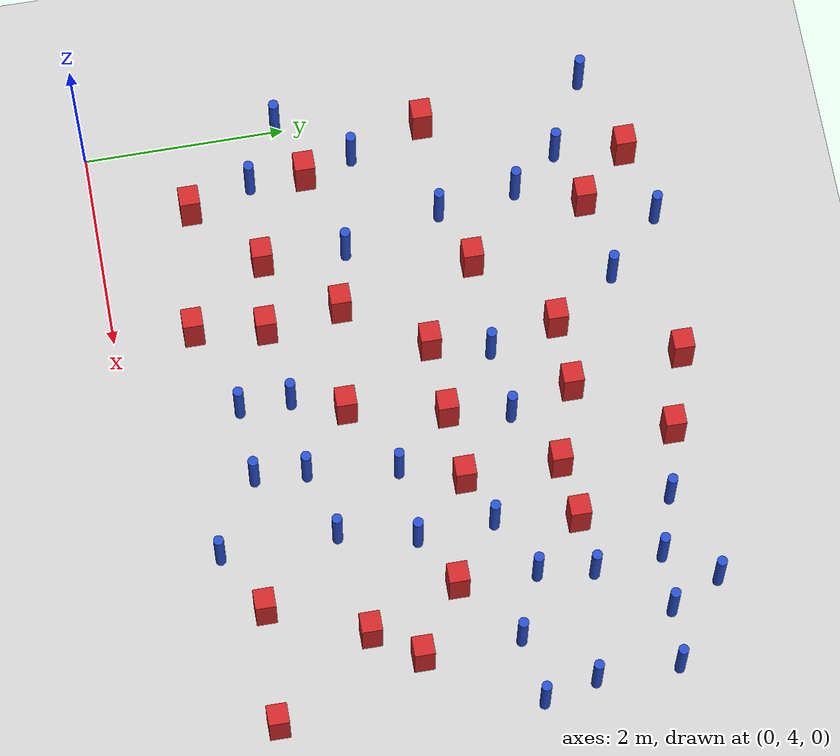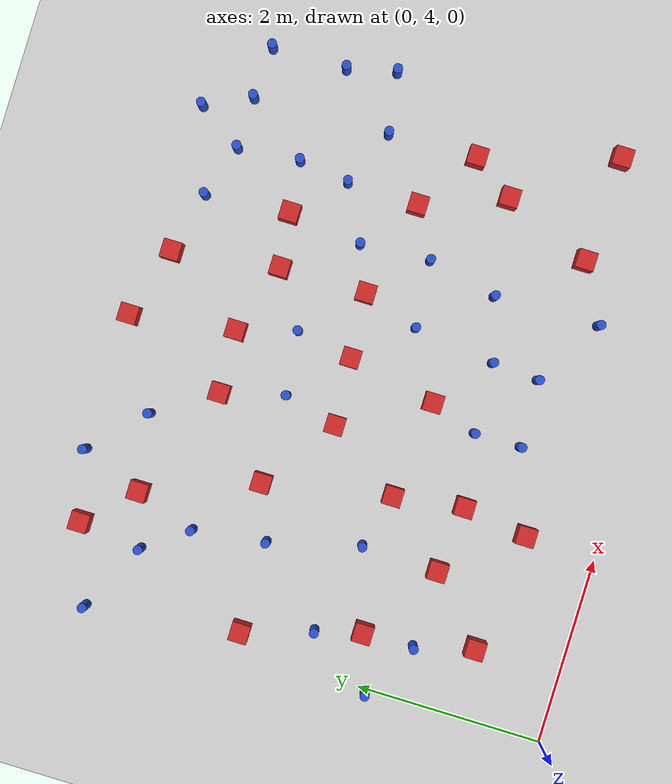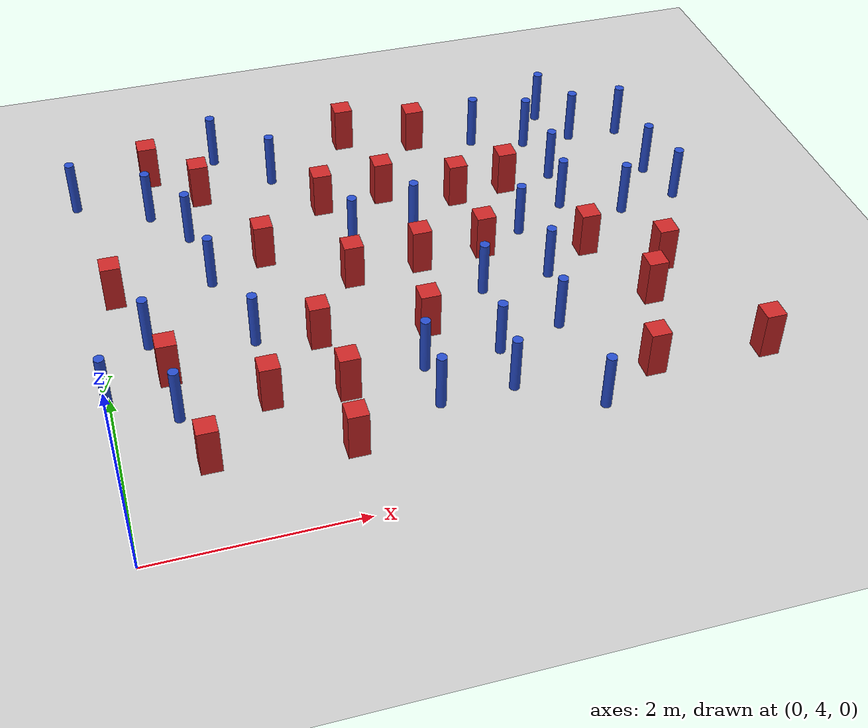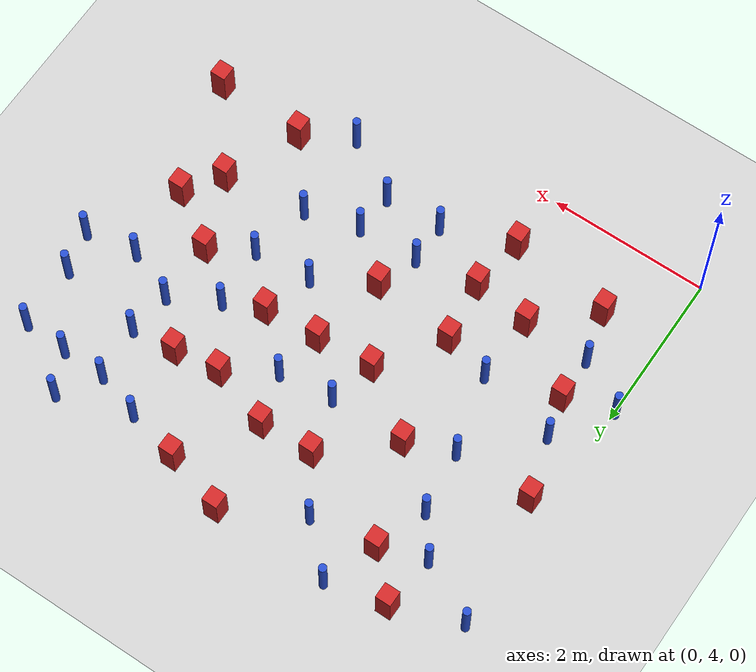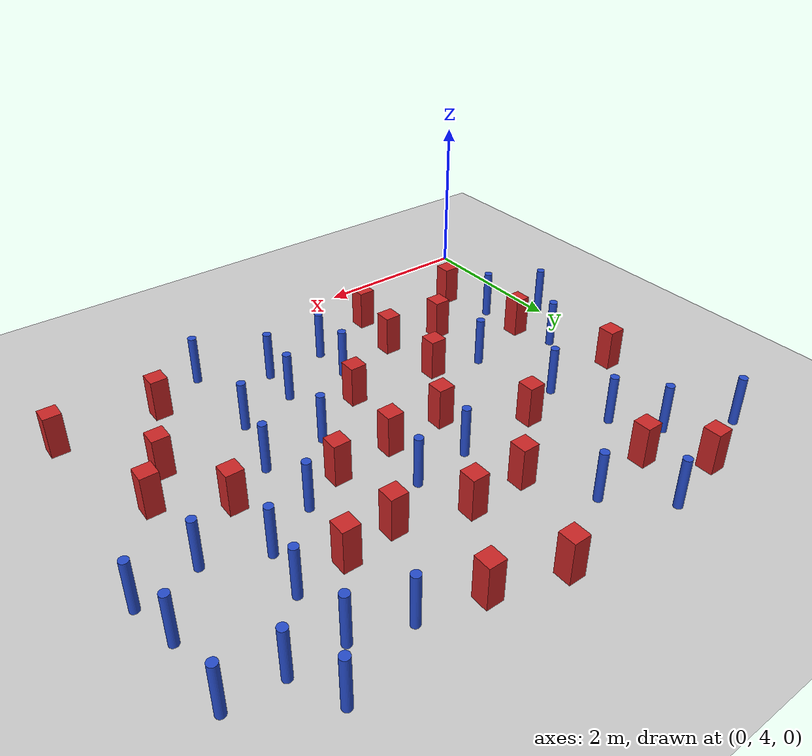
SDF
<sdf version="1.6">
 <world name="default">
  <model name="ground_plane">
   <static>1</static>
   <link name="link">
    <collision name="collision">
     <geometry><plane><normal>0 0 1</normal><size>100 100</size></plane></geometry>
     <surface><friction><ode><mu>100</mu><mu2>50</mu2></ode></friction></surface>
    </collision>
    <visual name="visual">
     <cast_shadows>0</cast_shadows>
     <geometry><plane><normal>0 0 1</normal><size>100 100</size></plane></geometry>
     <material>
      <ambient>1.0 1.0 1.0 1.0</ambient>
      <diffuse>0.8 0.8 0.8 1.0</diffuse>
      <specular>0.01 0.01 0.01 1.000000</specular>
     </material>
    </visual>
   </link>
  </model>
  <model name="square_post_obstacle1">
   <static>true</static>
   <pose>3.23395350639 8.3291602292 8.22691968438e-08 7.22125133819e-06 -7.54495500217e-07 2.29674213826e-05</pose>
   <link name="link">
    <pose>0 0 0.25 0 -0 0</pose>
    <inertial>
     <mass>100</mass>
     <inertia>
      <ixx>0.166667</ixx>
      <ixy>0</ixy>
      <ixz>0</ixz>
      <iyy>0.166667</iyy>
      <iyz>0</iyz>
      <izz>0.166667</izz>
     </inertia>
    </inertial>
    <collision name="collision"><geometry><box><size>.2 .2 .5</size></box></geometry></collision>
    <visual name="visual">
     <geometry><box><size>.2 .2 .5</size></box></geometry>
     <material>
      <script><name>Gazebo/Red</name><uri>file://media/materials/scripts/gazebo.material</uri></script>
     </material>
    </visual>
   </link>
  </model>
  <model name="pole_obstacle4">
   <static>true</static>
   <pose>4.50467344386 9.05752582636 2.88873142074e-08 -9.9053668967e-09 4.60219948993e-07 -1.20965994957e-07</pose>
   <link name="link">
    <pose>0 0 0.3 0 -0 0</pose>
    <inertial>
     <mass>1</mass>
     <inertia><ixx>0.145833</ixx><ixy>0</ixy><ixz>0</ixz><iyy>0.145833</iyy><iyz>0</iyz><izz>0.125</izz></inertia>
    </inertial>
    <collision name="collision">
     <geometry><cylinder><radius>0.05</radius><length>.6</length></cylinder></geometry>
    </collision>
    <visual name="visual">
     <geometry><cylinder><radius>0.05</radius><length>.6</length></cylinder></geometry>
     <material>
      <script><name>Gazebo/Blue</name><uri>file://media/materials/scripts/gazebo.material</uri></script>
     </material>
    </visual>
   </link>
  </model>
  <model name="square_post_obstacle5">
   <static>true</static>
   <pose>1.77964697952 7.60460296288 8.22691968438e-08 7.2212513382e-06 -7.54495500217e-07 2.29674213826e-05</pose>
   <link name="link">
    <pose>0 0 0.25 0 -0 0</pose>
    <inertial>
     <mass>100</mass>
     <inertia>
      <ixx>0.166667</ixx>
      <ixy>0</ixy>
      <ixz>0</ixz>
      <iyy>0.166667</iyy>
      <iyz>0</iyz>
      <izz>0.166667</izz>
     </inertia>
    </inertial>
    <collision name="collision"><geometry><box><size>.2 .2 .5</size></box></geometry></collision>
    <visual name="visual">
     <geometry><box><size>.2 .2 .5</size></box></geometry>
     <material>
      <script><name>Gazebo/Red</name><uri>file://media/materials/scripts/gazebo.material</uri></script>
     </material>
    </visual>
   </link>
  </model>
  <model name="pole_obstacle11">
   <static>true</static>
   <pose>6.20497927273 8.02178845406 2.88873142074e-08 -9.90536690354e-09 4.60219948977e-07 -1.20965994967e-07</pose>
   <link name="link">
    <pose>0 0 0.3 0 -0 0</pose>
    <inertial>
     <mass>1</mass>
     <inertia><ixx>0.145833</ixx><ixy>0</ixy><ixz>0</ixz><iyy>0.145833</iyy><iyz>0</iyz><izz>0.125</izz></inertia>
    </inertial>
    <collision name="collision">
     <geometry><cylinder><radius>0.05</radius><length>.6</length></cylinder></geometry>
    </collision>
    <visual name="visual">
     <geometry><cylinder><radius>0.05</radius><length>.6</length></cylinder></geometry>
     <material>
      <script><name>Gazebo/Blue</name><uri>file://media/materials/scripts/gazebo.material</uri></script>
     </material>
    </visual>
   </link>
  </model>
  <model name="pole_obstacle13">
   <static>true</static>
   <pose>4.39369261284 4.69720485507 2.88873142074e-08 -9.90536690842e-09 4.60219948965e-07 -1.20965994976e-07</pose>
   <link name="link">
    <pose>0 0 0.3 0 -0 0</pose>
    <inertial>
     <mass>1</mass>
     <inertia><ixx>0.145833</ixx><ixy>0</ixy><ixz>0</ixz><iyy>0.145833</iyy><iyz>0</iyz><izz>0.125</izz></inertia>
    </inertial>
    <collision name="collision">
     <geometry><cylinder><radius>0.05</radius><length>.6</length></cylinder></geometry>
    </collision>
    <visual name="visual">
     <geometry><cylinder><radius>0.05</radius><length>.6</length></cylinder></geometry>
     <material>
      <script><name>Gazebo/Blue</name><uri>file://media/materials/scripts/gazebo.material</uri></script>
     </material>
    </visual>
   </link>
  </model>
  <model name="square_post_obstacle12">
   <static>true</static>
   <pose>0.582915900474 6.12497515747 8.22691968438e-08 7.2212513382e-06 -7.54495500217e-07 2.29674213826e-05</pose>
   <link name="link">
    <pose>0 0 0.25 0 -0 0</pose>
    <inertial>
     <mass>100</mass>
     <inertia>
      <ixx>0.166667</ixx>
      <ixy>0</ixy>
      <ixz>0</ixz>
      <iyy>0.166667</iyy>
      <iyz>0</iyz>
      <izz>0.166667</izz>
     </inertia>
    </inertial>
    <collision name="collision"><geometry><box><size>.2 .2 .5</size></box></geometry></collision>
    <visual name="visual">
     <geometry><box><size>.2 .2 .5</size></box></geometry>
     <material>
      <script><name>Gazebo/Red</name><uri>file://media/materials/scripts/gazebo.material</uri></script>
     </material>
    </visual>
   </link>
  </model>
  <model name="pole_obstacle16">
   <static>true</static>
   <pose>3.65834895737 5.14077592062 2.88873142074e-08 -9.90536689859e-09 4.60219948989e-07 -1.20965994961e-07</pose>
   <link name="link">
    <pose>0 0 0.3 0 -0 0</pose>
    <inertial>
     <mass>1</mass>
     <inertia><ixx>0.145833</ixx><ixy>0</ixy><ixz>0</ixz><iyy>0.145833</iyy><iyz>0</iyz><izz>0.125</izz></inertia>
    </inertial>
    <collision name="collision">
     <geometry><cylinder><radius>0.05</radius><length>.6</length></cylinder></geometry>
    </collision>
    <visual name="visual">
     <geometry><cylinder><radius>0.05</radius><length>.6</length></cylinder></geometry>
     <material>
      <script><name>Gazebo/Blue</name><uri>file://media/materials/scripts/gazebo.material</uri></script>
     </material>
    </visual>
   </link>
  </model>
  <model name="square_post_obstacle15">
   <static>true</static>
   <pose>1.31850100591 8.81232633071 8.22691968438e-08 7.22125133819e-06 -7.54495500217e-07 2.29674213826e-05</pose>
   <link name="link">
    <pose>0 0 0.25 0 -0 0</pose>
    <inertial>
     <mass>100</mass>
     <inertia>
      <ixx>0.166667</ixx>
      <ixy>0</ixy>
      <ixz>0</ixz>
      <iyy>0.166667</iyy>
      <iyz>0</iyz>
      <izz>0.166667</izz>
     </inertia>
    </inertial>
    <collision name="collision"><geometry><box><size>.2 .2 .5</size></box></geometry></collision>
    <visual name="visual">
     <geometry><box><size>.2 .2 .5</size></box></geometry>
     <material>
      <script><name>Gazebo/Red</name><uri>file://media/materials/scripts/gazebo.material</uri></script>
     </material>
    </visual>
   </link>
  </model>
  <model name="square_post_obstacle17">
   <static>true</static>
   <pose>0.216666085858 7.36213609585 8.22691968438e-08 7.2212513382e-06 -7.54495500217e-07 2.29674213826e-05</pose>
   <link name="link">
    <pose>0 0 0.25 0 -0 0</pose>
    <inertial>
     <mass>100</mass>
     <inertia>
      <ixx>0.166667</ixx>
      <ixy>0</ixy>
      <ixz>0</ixz>
      <iyy>0.166667</iyy>
      <iyz>0</iyz>
      <izz>0.166667</izz>
     </inertia>
    </inertial>
    <collision name="collision"><geometry><box><size>.2 .2 .5</size></box></geometry></collision>
    <visual name="visual">
     <geometry><box><size>.2 .2 .5</size></box></geometry>
     <material>
      <script><name>Gazebo/Red</name><uri>file://media/materials/scripts/gazebo.material</uri></script>
     </material>
    </visual>
   </link>
  </model>
  <model name="pole_obstacle26">
   <static>true</static>
   <pose>6.19241230814 8.82830239012 2.88873142074e-08 -9.9053668967e-09 4.60219948993e-07 -1.20965994957e-07</pose>
   <link name="link">
    <pose>0 0 0.3 0 -0 0</pose>
    <inertial>
     <mass>1</mass>
     <inertia><ixx>0.145833</ixx><ixy>0</ixy><ixz>0</ixz><iyy>0.145833</iyy><iyz>0</iyz><izz>0.125</izz></inertia>
    </inertial>
    <collision name="collision">
     <geometry><cylinder><radius>0.05</radius><length>.6</length></cylinder></geometry>
    </collision>
    <visual name="visual">
     <geometry><cylinder><radius>0.05</radius><length>.6</length></cylinder></geometry>
     <material>
      <script><name>Gazebo/Blue</name><uri>file://media/materials/scripts/gazebo.material</uri></script>
     </material>
    </visual>
   </link>
  </model>
  <model name="square_post_obstacle20">
   <static>true</static>
   <pose>5.00220887481 5.03579053856 8.22691968438e-08 7.2212513382e-06 -7.54495500217e-07 2.29674213826e-05</pose>
   <link name="link">
    <pose>0 0 0.25 0 -0 0</pose>
    <inertial>
     <mass>100</mass>
     <inertia>
      <ixx>0.166667</ixx>
      <ixy>0</ixy>
      <ixz>0</ixz>
      <iyy>0.166667</iyy>
      <iyz>0</iyz>
      <izz>0.166667</izz>
     </inertia>
    </inertial>
    <collision name="collision"><geometry><box><size>.2 .2 .5</size></box></geometry></collision>
    <visual name="visual">
     <geometry><box><size>.2 .2 .5</size></box></geometry>
     <material>
      <script><name>Gazebo/Red</name><uri>file://media/materials/scripts/gazebo.material</uri></script>
     </material>
    </visual>
   </link>
  </model>
  <model name="square_post_obstacle29">
   <static>true</static>
   <pose>5.39937280579 5.98884649143 8.22691968438e-08 7.2212513382e-06 -7.54495500217e-07 2.29674213826e-05</pose>
   <link name="link">
    <pose>0 0 0.25 0 -0 0</pose>
    <inertial>
     <mass>100</mass>
     <inertia>
      <ixx>0.166667</ixx>
      <ixy>0</ixy>
      <ixz>0</ixz>
      <iyy>0.166667</iyy>
      <iyz>0</iyz>
      <izz>0.166667</izz>
     </inertia>
    </inertial>
    <collision name="collision"><geometry><box><size>.2 .2 .5</size></box></geometry></collision>
    <visual name="visual">
     <geometry><box><size>.2 .2 .5</size></box></geometry>
     <material>
      <script><name>Gazebo/Red</name><uri>file://media/materials/scripts/gazebo.material</uri></script>
     </material>
    </visual>
   </link>
  </model>
  <model name="square_post_obstacle32">
   <static>true</static>
   <pose>1.43313051988 5.56577451306 8.22691968438e-08 7.2212513382e-06 -7.54495500217e-07 2.29674213826e-05</pose>
   <link name="link">
    <pose>0 0 0.25 0 -0 0</pose>
    <inertial>
     <mass>100</mass>
     <inertia>
      <ixx>0.166667</ixx>
      <ixy>0</ixy>
      <ixz>0</ixz>
      <iyy>0.166667</iyy>
      <iyz>0</iyz>
      <izz>0.166667</izz>
     </inertia>
    </inertial>
    <collision name="collision"><geometry><box><size>.2 .2 .5</size></box></geometry></collision>
    <visual name="visual">
     <geometry><box><size>.2 .2 .5</size></box></geometry>
     <material>
      <script><name>Gazebo/Red</name><uri>file://media/materials/scripts/gazebo.material</uri></script>
     </material>
    </visual>
   </link>
  </model>
  <model name="pole_obstacle51">
   <static>true</static>
   <pose>2.73317292945 7.62359308794 2.88873142074e-08 -9.90536689859e-09 4.60219948989e-07 -1.20965994961e-07</pose>
   <link name="link">
    <pose>0 0 0.3 0 -0 0</pose>
    <inertial>
     <mass>1</mass>
     <inertia><ixx>0.145833</ixx><ixy>0</ixy><ixz>0</ixz><iyy>0.145833</iyy><iyz>0</iyz><izz>0.125</izz></inertia>
    </inertial>
    <collision name="collision">
     <geometry><cylinder><radius>0.05</radius><length>.6</length></cylinder></geometry>
    </collision>
    <visual name="visual">
     <geometry><cylinder><radius>0.05</radius><length>.6</length></cylinder></geometry>
     <material>
      <script><name>Gazebo/Blue</name><uri>file://media/materials/scripts/gazebo.material</uri></script>
     </material>
    </visual>
   </link>
  </model>
  <model name="square_post_obstacle44">
   <static>true</static>
   <pose>2.55658359005 8.30193880275 8.22691968438e-08 7.22125133819e-06 -7.54495500217e-07 2.29674213826e-05</pose>
   <link name="link">
    <pose>0 0 0.25 0 -0 0</pose>
    <inertial>
     <mass>100</mass>
     <inertia>
      <ixx>0.166667</ixx>
      <ixy>0</ixy>
      <ixz>0</ixz>
      <iyy>0.166667</iyy>
      <iyz>0</iyz>
      <izz>0.166667</izz>
     </inertia>
    </inertial>
    <collision name="collision"><geometry><box><size>.2 .2 .5</size></box></geometry></collision>
    <visual name="visual">
     <geometry><box><size>.2 .2 .5</size></box></geometry>
     <material>
      <script><name>Gazebo/Red</name><uri>file://media/materials/scripts/gazebo.material</uri></script>
     </material>
    </visual>
   </link>
  </model>
  <model name="square_post_obstacle47">
   <static>true</static>
   <pose>2.58552369329 7.04268319471 8.22691968438e-08 7.2212513382e-06 -7.54495500217e-07 2.29674213826e-05</pose>
   <link name="link">
    <pose>0 0 0.25 0 -0 0</pose>
    <inertial>
     <mass>100</mass>
     <inertia>
      <ixx>0.166667</ixx>
      <ixy>0</ixy>
      <ixz>0</ixz>
      <iyy>0.166667</iyy>
      <iyz>0</iyz>
      <izz>0.166667</izz>
     </inertia>
    </inertial>
    <collision name="collision"><geometry><box><size>.2 .2 .5</size></box></geometry></collision>
    <visual name="visual">
     <geometry><box><size>.2 .2 .5</size></box></geometry>
     <material>
      <script><name>Gazebo/Red</name><uri>file://media/materials/scripts/gazebo.material</uri></script>
     </material>
    </visual>
   </link>
  </model>
  <model name="pole_obstacle67">
   <static>true</static>
   <pose>1.09056201065 8.16014506725 2.88873142074e-08 -9.90536690474e-09 4.60219948974e-07 -1.2096599497e-07</pose>
   <link name="link">
    <pose>0 0 0.3 0 -0 0</pose>
    <inertial>
     <mass>1</mass>
     <inertia><ixx>0.145833</ixx><ixy>0</ixy><ixz>0</ixz><iyy>0.145833</iyy><iyz>0</iyz><izz>0.125</izz></inertia>
    </inertial>
    <collision name="collision">
     <geometry><cylinder><radius>0.05</radius><length>.6</length></cylinder></geometry>
    </collision>
    <visual name="visual">
     <geometry><cylinder><radius>0.05</radius><length>.6</length></cylinder></geometry>
     <material>
      <script><name>Gazebo/Blue</name><uri>file://media/materials/scripts/gazebo.material</uri></script>
     </material>
    </visual>
   </link>
  </model>
  <model name="square_post_obstacle58">
   <static>true</static>
   <pose>5.05059603485 6.88656976854 8.22691968438e-08 7.2212513382e-06 -7.54495500217e-07 2.29674213826e-05</pose>
   <link name="link">
    <pose>0 0 0.25 0 -0 0</pose>
    <inertial>
     <mass>100</mass>
     <inertia>
      <ixx>0.166667</ixx>
      <ixy>0</ixy>
      <ixz>0</ixz>
      <iyy>0.166667</iyy>
      <iyz>0</iyz>
      <izz>0.166667</izz>
     </inertia>
    </inertial>
    <collision name="collision"><geometry><box><size>.2 .2 .5</size></box></geometry></collision>
    <visual name="visual">
     <geometry><box><size>.2 .2 .5</size></box></geometry>
     <material>
      <script><name>Gazebo/Red</name><uri>file://media/materials/scripts/gazebo.material</uri></script>
     </material>
    </visual>
   </link>
  </model>
  <model name="pole_obstacle73">
   <static>true</static>
   <pose>0.591445813026 5.57519665587 2.88873142074e-08 -9.90536689661e-09 4.60219948993e-07 -1.20965994957e-07</pose>
   <link name="link">
    <pose>0 0 0.3 0 -0 0</pose>
    <inertial>
     <mass>1</mass>
     <inertia><ixx>0.145833</ixx><ixy>0</ixy><ixz>0</ixz><iyy>0.145833</iyy><iyz>0</iyz><izz>0.125</izz></inertia>
    </inertial>
    <collision name="collision">
     <geometry><cylinder><radius>0.05</radius><length>.6</length></cylinder></geometry>
    </collision>
    <visual name="visual">
     <geometry><cylinder><radius>0.05</radius><length>.6</length></cylinder></geometry>
     <material>
      <script><name>Gazebo/Blue</name><uri>file://media/materials/scripts/gazebo.material</uri></script>
     </material>
    </visual>
   </link>
  </model>
  <model name="pole_obstacle87">
   <static>true</static>
   <pose>1.19698920645 7.37486757432 2.88873142074e-08 -9.90536689852e-09 4.60219948989e-07 -1.2096599496e-07</pose>
   <link name="link">
    <pose>0 0 0.3 0 -0 0</pose>
    <inertial>
     <mass>1</mass>
     <inertia><ixx>0.145833</ixx><ixy>0</ixy><ixz>0</ixz><iyy>0.145833</iyy><iyz>0</iyz><izz>0.125</izz></inertia>
    </inertial>
    <collision name="collision">
     <geometry><cylinder><radius>0.05</radius><length>.6</length></cylinder></geometry>
    </collision>
    <visual name="visual">
     <geometry><cylinder><radius>0.05</radius><length>.6</length></cylinder></geometry>
     <material>
      <script><name>Gazebo/Blue</name><uri>file://media/materials/scripts/gazebo.material</uri></script>
     </material>
    </visual>
   </link>
  </model>
  <model name="pole_obstacle91">
   <static>true</static>
   <pose>0.743814091779 8.62327931904 2.88873142074e-08 -9.90536690779e-09 4.60219948967e-07 -1.20965994975e-07</pose>
   <link name="link">
    <pose>0 0 0.3 0 -0 0</pose>
    <inertial>
     <mass>1</mass>
     <inertia><ixx>0.145833</ixx><ixy>0</ixy><ixz>0</ixz><iyy>0.145833</iyy><iyz>0</iyz><izz>0.125</izz></inertia>
    </inertial>
    <collision name="collision">
     <geometry><cylinder><radius>0.05</radius><length>.6</length></cylinder></geometry>
    </collision>
    <visual name="visual">
     <geometry><cylinder><radius>0.05</radius><length>.6</length></cylinder></geometry>
     <material>
      <script><name>Gazebo/Blue</name><uri>file://media/materials/scripts/gazebo.material</uri></script>
     </material>
    </visual>
   </link>
  </model>
  <model name="square_post_obstacle86">
   <static>true</static>
   <pose>0.836704589914 9.30270837398 8.22691968438e-08 7.22125133819e-06 -7.54495500217e-07 2.29674213826e-05</pose>
   <link name="link">
    <pose>0 0 0.25 0 -0 0</pose>
    <inertial>
     <mass>100</mass>
     <inertia>
      <ixx>0.166667</ixx>
      <ixy>0</ixy>
      <ixz>0</ixz>
      <iyy>0.166667</iyy>
      <iyz>0</iyz>
      <izz>0.166667</izz>
     </inertia>
    </inertial>
    <collision name="collision"><geometry><box><size>.2 .2 .5</size></box></geometry></collision>
    <visual name="visual">
     <geometry><box><size>.2 .2 .5</size></box></geometry>
     <material>
      <script><name>Gazebo/Red</name><uri>file://media/materials/scripts/gazebo.material</uri></script>
     </material>
    </visual>
   </link>
  </model>
  <model name="pole_obstacle94">
   <static>true</static>
   <pose>5.39579944158 9.35738883795 2.88873142074e-08 -9.9053668967e-09 4.60219948993e-07 -1.20965994957e-07</pose>
   <link name="link">
    <pose>0 0 0.3 0 -0 0</pose>
    <inertial>
     <mass>1</mass>
     <inertia><ixx>0.145833</ixx><ixy>0</ixy><ixz>0</ixz><iyy>0.145833</iyy><iyz>0</iyz><izz>0.125</izz></inertia>
    </inertial>
    <collision name="collision">
     <geometry><cylinder><radius>0.05</radius><length>.6</length></cylinder></geometry>
    </collision>
    <visual name="visual">
     <geometry><cylinder><radius>0.05</radius><length>.6</length></cylinder></geometry>
     <material>
      <script><name>Gazebo/Blue</name><uri>file://media/materials/scripts/gazebo.material</uri></script>
     </material>
    </visual>
   </link>
  </model>
  <model name="pole_obstacle101">
   <static>true</static>
   <pose>4.36683583871 5.83712993097 2.88873142074e-08 -9.90536690842e-09 4.60219948965e-07 -1.20965994976e-07</pose>
   <link name="link">
    <pose>0 0 0.3 0 -0 0</pose>
    <inertial>
     <mass>1</mass>
     <inertia><ixx>0.145833</ixx><ixy>0</ixy><ixz>0</ixz><iyy>0.145833</iyy><iyz>0</iyz><izz>0.125</izz></inertia>
    </inertial>
    <collision name="collision">
     <geometry><cylinder><radius>0.05</radius><length>.6</length></cylinder></geometry>
    </collision>
    <visual name="visual">
     <geometry><cylinder><radius>0.05</radius><length>.6</length></cylinder></geometry>
     <material>
      <script><name>Gazebo/Blue</name><uri>file://media/materials/scripts/gazebo.material</uri></script>
     </material>
    </visual>
   </link>
  </model>
  <model name="square_post_obstacle95">
   <static>true</static>
   <pose>2.04910215046 6.24467513878 8.22691968438e-08 7.22125133819e-06 -7.54495500217e-07 2.29674213826e-05</pose>
   <link name="link">
    <pose>0 0 0.25 0 -0 0</pose>
    <inertial>
     <mass>100</mass>
     <inertia>
      <ixx>0.166667</ixx>
      <ixy>0</ixy>
      <ixz>0</ixz>
      <iyy>0.166667</iyy>
      <iyz>0</iyz>
      <izz>0.166667</izz>
     </inertia>
    </inertial>
    <collision name="collision"><geometry><box><size>.2 .2 .5</size></box></geometry></collision>
    <visual name="visual">
     <geometry><box><size>.2 .2 .5</size></box></geometry>
     <material>
      <script><name>Gazebo/Red</name><uri>file://media/materials/scripts/gazebo.material</uri></script>
     </material>
    </visual>
   </link>
  </model>
  <model name="pole_obstacle109">
   <static>true</static>
   <pose>3.69252319032 5.64819771861 2.88873142074e-08 -9.90536689859e-09 4.60219948989e-07 -1.20965994961e-07</pose>
   <link name="link">
    <pose>0 0 0.3 0 -0 0</pose>
    <inertial>
     <mass>1</mass>
     <inertia><ixx>0.145833</ixx><ixy>0</ixy><ixz>0</ixz><iyy>0.145833</iyy><iyz>0</iyz><izz>0.125</izz></inertia>
    </inertial>
    <collision name="collision">
     <geometry><cylinder><radius>0.05</radius><length>.6</length></cylinder></geometry>
    </collision>
    <visual name="visual">
     <geometry><cylinder><radius>0.05</radius><length>.6</length></cylinder></geometry>
     <material>
      <script><name>Gazebo/Blue</name><uri>file://media/materials/scripts/gazebo.material</uri></script>
     </material>
    </visual>
   </link>
  </model>
  <model name="square_post_obstacle104">
   <static>true</static>
   <pose>2.15419588795 5.49115238194 8.22691968438e-08 7.2212513382e-06 -7.54495500217e-07 2.29674213826e-05</pose>
   <link name="link">
    <pose>0 0 0.25 0 -0 0</pose>
    <inertial>
     <mass>100</mass>
     <inertia>
      <ixx>0.166667</ixx>
      <ixy>0</ixy>
      <ixz>0</ixz>
      <iyy>0.166667</iyy>
      <iyz>0</iyz>
      <izz>0.166667</izz>
     </inertia>
    </inertial>
    <collision name="collision"><geometry><box><size>.2 .2 .5</size></box></geometry></collision>
    <visual name="visual">
     <geometry><box><size>.2 .2 .5</size></box></geometry>
     <material>
      <script><name>Gazebo/Red</name><uri>file://media/materials/scripts/gazebo.material</uri></script>
     </material>
    </visual>
   </link>
  </model>
  <model name="square_post_obstacle106">
   <static>true</static>
   <pose>4.00553795156 7.13766085346 8.22691968438e-08 7.2212513382e-06 -7.54495500217e-07 2.29674213826e-05</pose>
   <link name="link">
    <pose>0 0 0.25 0 -0 0</pose>
    <inertial>
     <mass>100</mass>
     <inertia>
      <ixx>0.166667</ixx>
      <ixy>0</ixy>
      <ixz>0</ixz>
      <iyy>0.166667</iyy>
      <iyz>0</iyz>
      <izz>0.166667</izz>
     </inertia>
    </inertial>
    <collision name="collision"><geometry><box><size>.2 .2 .5</size></box></geometry></collision>
    <visual name="visual">
     <geometry><box><size>.2 .2 .5</size></box></geometry>
     <material>
      <script><name>Gazebo/Red</name><uri>file://media/materials/scripts/gazebo.material</uri></script>
     </material>
    </visual>
   </link>
  </model>
  <model name="square_post_obstacle119">
   <static>true</static>
   <pose>5.71247968943 6.43821835599 8.22691968438e-08 7.2212513382e-06 -7.54495500217e-07 2.29674213826e-05</pose>
   <link name="link">
    <pose>0 0 0.25 0 -0 0</pose>
    <inertial>
     <mass>100</mass>
     <inertia>
      <ixx>0.166667</ixx>
      <ixy>0</ixy>
      <ixz>0</ixz>
      <iyy>0.166667</iyy>
      <iyz>0</iyz>
      <izz>0.166667</izz>
     </inertia>
    </inertial>
    <collision name="collision"><geometry><box><size>.2 .2 .5</size></box></geometry></collision>
    <visual name="visual">
     <geometry><box><size>.2 .2 .5</size></box></geometry>
     <material>
      <script><name>Gazebo/Red</name><uri>file://media/materials/scripts/gazebo.material</uri></script>
     </material>
    </visual>
   </link>
  </model>
  <model name="pole_obstacle125">
   <static>true</static>
   <pose>5.67909218123 7.3978979548 2.88873142074e-08 -9.90536690842e-09 4.60219948965e-07 -1.20965994976e-07</pose>
   <link name="link">
    <pose>0 0 0.3 0 -0 0</pose>
    <inertial>
     <mass>1</mass>
     <inertia><ixx>0.145833</ixx><ixy>0</ixy><ixz>0</ixz><iyy>0.145833</iyy><iyz>0</iyz><izz>0.125</izz></inertia>
    </inertial>
    <collision name="collision">
     <geometry><cylinder><radius>0.05</radius><length>.6</length></cylinder></geometry>
    </collision>
    <visual name="visual">
     <geometry><cylinder><radius>0.05</radius><length>.6</length></cylinder></geometry>
     <material>
      <script><name>Gazebo/Blue</name><uri>file://media/materials/scripts/gazebo.material</uri></script>
     </material>
    </visual>
   </link>
  </model>
  <model name="square_post_obstacle139">
   <static>true</static>
   <pose>4.0002030749 8.07627700926 8.22691968438e-08 7.22125133819e-06 -7.54495500217e-07 2.29674213826e-05</pose>
   <link name="link">
    <pose>0 0 0.25 0 -0 0</pose>
    <inertial>
     <mass>100</mass>
     <inertia>
      <ixx>0.166667</ixx>
      <ixy>0</ixy>
      <ixz>0</ixz>
      <iyy>0.166667</iyy>
      <iyz>0</iyz>
      <izz>0.166667</izz>
     </inertia>
    </inertial>
    <collision name="collision"><geometry><box><size>.2 .2 .5</size></box></geometry></collision>
    <visual name="visual">
     <geometry><box><size>.2 .2 .5</size></box></geometry>
     <material>
      <script><name>Gazebo/Red</name><uri>file://media/materials/scripts/gazebo.material</uri></script>
     </material>
    </visual>
   </link>
  </model>
  <model name="square_post_obstacle143">
   <static>true</static>
   <pose>4.58001186544 8.14677883931 8.22691968438e-08 7.22125133819e-06 -7.54495500217e-07 2.29674213826e-05</pose>
   <link name="link">
    <pose>0 0 0.25 0 -0 0</pose>
    <inertial>
     <mass>100</mass>
     <inertia>
      <ixx>0.166667</ixx>
      <ixy>0</ixy>
      <ixz>0</ixz>
      <iyy>0.166667</iyy>
      <iyz>0</iyz>
      <izz>0.166667</izz>
     </inertia>
    </inertial>
    <collision name="collision"><geometry><box><size>.2 .2 .5</size></box></geometry></collision>
    <visual name="visual">
     <geometry><box><size>.2 .2 .5</size></box></geometry>
     <material>
      <script><name>Gazebo/Red</name><uri>file://media/materials/scripts/gazebo.material</uri></script>
     </material>
    </visual>
   </link>
  </model>
  <model name="square_post_obstacle150">
   <static>true</static>
   <pose>3.30808957345 7.08871958962 8.22691968438e-08 7.2212513382e-06 -7.54495500217e-07 2.29674213826e-05</pose>
   <link name="link">
    <pose>0 0 0.25 0 -0 0</pose>
    <inertial>
     <mass>100</mass>
     <inertia>
      <ixx>0.166667</ixx>
      <ixy>0</ixy>
      <ixz>0</ixz>
      <iyy>0.166667</iyy>
      <iyz>0</iyz>
      <izz>0.166667</izz>
     </inertia>
    </inertial>
    <collision name="collision"><geometry><box><size>.2 .2 .5</size></box></geometry></collision>
    <visual name="visual">
     <geometry><box><size>.2 .2 .5</size></box></geometry>
     <material>
      <script><name>Gazebo/Red</name><uri>file://media/materials/scripts/gazebo.material</uri></script>
     </material>
    </visual>
   </link>
  </model>
  <model name="pole_obstacle158">
   <static>true</static>
   <pose>5.07479252222 8.87453949791 2.88873142074e-08 -9.9053668967e-09 4.60219948993e-07 -1.20965994957e-07</pose>
   <link name="link">
    <pose>0 0 0.3 0 -0 0</pose>
    <inertial>
     <mass>1</mass>
     <inertia><ixx>0.145833</ixx><ixy>0</ixy><ixz>0</ixz><iyy>0.145833</iyy><iyz>0</iyz><izz>0.125</izz></inertia>
    </inertial>
    <collision name="collision">
     <geometry><cylinder><radius>0.05</radius><length>.6</length></cylinder></geometry>
    </collision>
    <visual name="visual">
     <geometry><cylinder><radius>0.05</radius><length>.6</length></cylinder></geometry>
     <material>
      <script><name>Gazebo/Blue</name><uri>file://media/materials/scripts/gazebo.material</uri></script>
     </material>
    </visual>
   </link>
  </model>
  <model name="square_post_obstacle163">
   <static>true</static>
   <pose>3.10931789399 6.12641890636 8.22691968438e-08 7.2212513382e-06 -7.54495500217e-07 2.29674213826e-05</pose>
   <link name="link">
    <pose>0 0 0.25 0 -0 0</pose>
    <inertial>
     <mass>100</mass>
     <inertia>
      <ixx>0.166667</ixx>
      <ixy>0</ixy>
      <ixz>0</ixz>
      <iyy>0.166667</iyy>
      <iyz>0</iyz>
      <izz>0.166667</izz>
     </inertia>
    </inertial>
    <collision name="collision"><geometry><box><size>.2 .2 .5</size></box></geometry></collision>
    <visual name="visual">
     <geometry><box><size>.2 .2 .5</size></box></geometry>
     <material>
      <script><name>Gazebo/Red</name><uri>file://media/materials/scripts/gazebo.material</uri></script>
     </material>
    </visual>
   </link>
  </model>
  <model name="pole_obstacle166">
   <static>true</static>
   <pose>1.45496131161 6.39677887726 2.88873142074e-08 -9.90536689852e-09 4.60219948989e-07 -1.2096599496e-07</pose>
   <link name="link">
    <pose>0 0 0.3 0 -0 0</pose>
    <inertial>
     <mass>1</mass>
     <inertia><ixx>0.145833</ixx><ixy>0</ixy><ixz>0</ixz><iyy>0.145833</iyy><iyz>0</iyz><izz>0.125</izz></inertia>
    </inertial>
    <collision name="collision">
     <geometry><cylinder><radius>0.05</radius><length>.6</length></cylinder></geometry>
    </collision>
    <visual name="visual">
     <geometry><cylinder><radius>0.05</radius><length>.6</length></cylinder></geometry>
     <material>
      <script><name>Gazebo/Blue</name><uri>file://media/materials/scripts/gazebo.material</uri></script>
     </material>
    </visual>
   </link>
  </model>
  <model name="square_post_obstacle167">
   <static>true</static>
   <pose>6.14526640727 4.9828907567 8.22691968438e-08 7.2212513382e-06 -7.54495500217e-07 2.29674213826e-05</pose>
   <link name="link">
    <pose>0 0 0.25 0 -0 0</pose>
    <inertial>
     <mass>100</mass>
     <inertia>
      <ixx>0.166667</ixx>
      <ixy>0</ixy>
      <ixz>0</ixz>
      <iyy>0.166667</iyy>
      <iyz>0</iyz>
      <izz>0.166667</izz>
     </inertia>
    </inertial>
    <collision name="collision"><geometry><box><size>.2 .2 .5</size></box></geometry></collision>
    <visual name="visual">
     <geometry><box><size>.2 .2 .5</size></box></geometry>
     <material>
      <script><name>Gazebo/Red</name><uri>file://media/materials/scripts/gazebo.material</uri></script>
     </material>
    </visual>
   </link>
  </model>
  <model name="square_post_obstacle172">
   <static>true</static>
   <pose>2.05414876784 4.78805152157 8.22691968438e-08 7.22125133819e-06 -7.54495500217e-07 2.29674213826e-05</pose>
   <link name="link">
    <pose>0 0 0.25 0 -0 0</pose>
    <inertial>
     <mass>100</mass>
     <inertia>
      <ixx>0.166667</ixx>
      <ixy>0</ixy>
      <ixz>0</ixz>
      <iyy>0.166667</iyy>
      <iyz>0</iyz>
      <izz>0.166667</izz>
     </inertia>
    </inertial>
    <collision name="collision"><geometry><box><size>.2 .2 .5</size></box></geometry></collision>
    <visual name="visual">
     <geometry><box><size>.2 .2 .5</size></box></geometry>
     <material>
      <script><name>Gazebo/Red</name><uri>file://media/materials/scripts/gazebo.material</uri></script>
     </material>
    </visual>
   </link>
  </model>
  <model name="pole_obstacle176">
   <static>true</static>
   <pose>2.9314733033 5.10986464592 2.88873142074e-08 -9.90536689859e-09 4.60219948989e-07 -1.20965994961e-07</pose>
   <link name="link">
    <pose>0 0 0.3 0 -0 0</pose>
    <inertial>
     <mass>1</mass>
     <inertia><ixx>0.145833</ixx><ixy>0</ixy><ixz>0</ixz><iyy>0.145833</iyy><iyz>0</iyz><izz>0.125</izz></inertia>
    </inertial>
    <collision name="collision">
     <geometry><cylinder><radius>0.05</radius><length>.6</length></cylinder></geometry>
    </collision>
    <visual name="visual">
     <geometry><cylinder><radius>0.05</radius><length>.6</length></cylinder></geometry>
     <material>
      <script><name>Gazebo/Blue</name><uri>file://media/materials/scripts/gazebo.material</uri></script>
     </material>
    </visual>
   </link>
  </model>
  <model name="square_post_obstacle174">
   <static>true</static>
   <pose>3.8366909518 9.21589292988 8.22691968438e-08 7.22125133819e-06 -7.54495500217e-07 2.29674213826e-05</pose>
   <link name="link">
    <pose>0 0 0.25 0 -0 0</pose>
    <inertial>
     <mass>100</mass>
     <inertia>
      <ixx>0.166667</ixx>
      <ixy>0</ixy>
      <ixz>0</ixz>
      <iyy>0.166667</iyy>
      <iyz>0</iyz>
      <izz>0.166667</izz>
     </inertia>
    </inertial>
    <collision name="collision"><geometry><box><size>.2 .2 .5</size></box></geometry></collision>
    <visual name="visual">
     <geometry><box><size>.2 .2 .5</size></box></geometry>
     <material>
      <script><name>Gazebo/Red</name><uri>file://media/materials/scripts/gazebo.material</uri></script>
     </material>
    </visual>
   </link>
  </model>
  <model name="square_post_obstacle182">
   <static>true</static>
   <pose>0.765621160152 4.95020980035 8.22691968438e-08 7.2212513382e-06 -7.54495500217e-07 2.29674213826e-05</pose>
   <link name="link">
    <pose>0 0 0.25 0 -0 0</pose>
    <inertial>
     <mass>100</mass>
     <inertia>
      <ixx>0.166667</ixx>
      <ixy>0</ixy>
      <ixz>0</ixz>
      <iyy>0.166667</iyy>
      <iyz>0</iyz>
      <izz>0.166667</izz>
     </inertia>
    </inertial>
    <collision name="collision"><geometry><box><size>.2 .2 .5</size></box></geometry></collision>
    <visual name="visual">
     <geometry><box><size>.2 .2 .5</size></box></geometry>
     <material>
      <script><name>Gazebo/Red</name><uri>file://media/materials/scripts/gazebo.material</uri></script>
     </material>
    </visual>
   </link>
  </model>
  <model name="pole_obstacle183">
   <static>true</static>
   <pose>5.62984820517 8.86365804655 2.88873142074e-08 -9.9053668967e-09 4.60219948993e-07 -1.20965994957e-07</pose>
   <link name="link">
    <pose>0 0 0.3 0 -0 0</pose>
    <inertial>
     <mass>1</mass>
     <inertia><ixx>0.145833</ixx><ixy>0</ixy><ixz>0</ixz><iyy>0.145833</iyy><iyz>0</iyz><izz>0.125</izz></inertia>
    </inertial>
    <collision name="collision">
     <geometry><cylinder><radius>0.05</radius><length>.6</length></cylinder></geometry>
    </collision>
    <visual name="visual">
     <geometry><cylinder><radius>0.05</radius><length>.6</length></cylinder></geometry>
     <material>
      <script><name>Gazebo/Blue</name><uri>file://media/materials/scripts/gazebo.material</uri></script>
     </material>
    </visual>
   </link>
  </model>
  <model name="pole_obstacle189">
   <static>true</static>
   <pose>5.06498988104 7.65884942234 2.88873142074e-08 -9.90536690842e-09 4.60219948965e-07 -1.20965994976e-07</pose>
   <link name="link">
    <pose>0 0 0.3 0 -0 0</pose>
    <inertial>
     <mass>1</mass>
     <inertia><ixx>0.145833</ixx><ixy>0</ixy><ixz>0</ixz><iyy>0.145833</iyy><iyz>0</iyz><izz>0.125</izz></inertia>
    </inertial>
    <collision name="collision">
     <geometry><cylinder><radius>0.05</radius><length>.6</length></cylinder></geometry>
    </collision>
    <visual name="visual">
     <geometry><cylinder><radius>0.05</radius><length>.6</length></cylinder></geometry>
     <material>
      <script><name>Gazebo/Blue</name><uri>file://media/materials/scripts/gazebo.material</uri></script>
     </material>
    </visual>
   </link>
  </model>
  <model name="pole_obstacle190">
   <static>true</static>
   <pose>2.92774697867 5.61587404323 2.88873142074e-08 -9.90536689859e-09 4.60219948989e-07 -1.20965994961e-07</pose>
   <link name="link">
    <pose>0 0 0.3 0 -0 0</pose>
    <inertial>
     <mass>1</mass>
     <inertia><ixx>0.145833</ixx><ixy>0</ixy><ixz>0</ixz><iyy>0.145833</iyy><iyz>0</iyz><izz>0.125</izz></inertia>
    </inertial>
    <collision name="collision">
     <geometry><cylinder><radius>0.05</radius><length>.6</length></cylinder></geometry>
    </collision>
    <visual name="visual">
     <geometry><cylinder><radius>0.05</radius><length>.6</length></cylinder></geometry>
     <material>
      <script><name>Gazebo/Blue</name><uri>file://media/materials/scripts/gazebo.material</uri></script>
     </material>
    </visual>
   </link>
  </model>
  <model name="square_post_obstacle202">
   <static>true</static>
   <pose>3.06929683911 9.44872243057 8.22691968438e-08 7.22125133819e-06 -7.54495500217e-07 2.29674213826e-05</pose>
   <link name="link">
    <pose>0 0 0.25 0 -0 0</pose>
    <inertial>
     <mass>100</mass>
     <inertia>
      <ixx>0.166667</ixx>
      <ixy>0</ixy>
      <ixz>0</ixz>
      <iyy>0.166667</iyy>
      <iyz>0</iyz>
      <izz>0.166667</izz>
     </inertia>
    </inertial>
    <collision name="collision"><geometry><box><size>.2 .2 .5</size></box></geometry></collision>
    <visual name="visual">
     <geometry><box><size>.2 .2 .5</size></box></geometry>
     <material>
      <script><name>Gazebo/Red</name><uri>file://media/materials/scripts/gazebo.material</uri></script>
     </material>
    </visual>
   </link>
  </model>
  <model name="pole_obstacle194">
   <static>true</static>
   <pose>3.80827368892 6.53134064048 2.88873142074e-08 -9.90536689859e-09 4.60219948989e-07 -1.20965994961e-07</pose>
   <link name="link">
    <pose>0 0 0.3 0 -0 0</pose>
    <inertial>
     <mass>1</mass>
     <inertia><ixx>0.145833</ixx><ixy>0</ixy><ixz>0</ixz><iyy>0.145833</iyy><iyz>0</iyz><izz>0.125</izz></inertia>
    </inertial>
    <collision name="collision">
     <geometry><cylinder><radius>0.05</radius><length>.6</length></cylinder></geometry>
    </collision>
    <visual name="visual">
     <geometry><cylinder><radius>0.05</radius><length>.6</length></cylinder></geometry>
     <material>
      <script><name>Gazebo/Blue</name><uri>file://media/materials/scripts/gazebo.material</uri></script>
     </material>
    </visual>
   </link>
  </model>
  <model name="pole_obstacle200">
   <static>true</static>
   <pose>-0.00135367713759 9.00314037294 2.88873142074e-08 -9.90536690759e-09 4.60219948967e-07 -1.20965994975e-07</pose>
   <link name="link">
    <pose>0 0 0.3 0 -0 0</pose>
    <inertial>
     <mass>1</mass>
     <inertia><ixx>0.145833</ixx><ixy>0</ixy><ixz>0</ixz><iyy>0.145833</iyy><iyz>0</iyz><izz>0.125</izz></inertia>
    </inertial>
    <collision name="collision">
     <geometry><cylinder><radius>0.05</radius><length>.6</length></cylinder></geometry>
    </collision>
    <visual name="visual">
     <geometry><cylinder><radius>0.05</radius><length>.6</length></cylinder></geometry>
     <material>
      <script><name>Gazebo/Blue</name><uri>file://media/materials/scripts/gazebo.material</uri></script>
     </material>
    </visual>
   </link>
  </model>
  <model name="pole_obstacle203">
   <static>true</static>
   <pose>2.13417230061 8.94275222885 2.88873142074e-08 -9.90536692318e-09 4.6021994893e-07 -1.20965994988e-07</pose>
   <link name="link">
    <pose>0 0 0.3 0 -0 0</pose>
    <inertial>
     <mass>1</mass>
     <inertia><ixx>0.145833</ixx><ixy>0</ixy><ixz>0</ixz><iyy>0.145833</iyy><iyz>0</iyz><izz>0.125</izz></inertia>
    </inertial>
    <collision name="collision">
     <geometry><cylinder><radius>0.05</radius><length>.6</length></cylinder></geometry>
    </collision>
    <visual name="visual">
     <geometry><cylinder><radius>0.05</radius><length>.6</length></cylinder></geometry>
     <material>
      <script><name>Gazebo/Blue</name><uri>file://media/materials/scripts/gazebo.material</uri></script>
     </material>
    </visual>
   </link>
  </model>
  <model name="pole_obstacle209">
   <static>true</static>
   <pose>-0.0223758426906 5.92194958183 2.88873142074e-08 -9.90536689599e-09 4.60219948995e-07 -1.20965994958e-07</pose>
   <link name="link">
    <pose>0 0 0.3 0 -0 0</pose>
    <inertial>
     <mass>1</mass>
     <inertia><ixx>0.145833</ixx><ixy>0</ixy><ixz>0</ixz><iyy>0.145833</iyy><iyz>0</iyz><izz>0.125</izz></inertia>
    </inertial>
    <collision name="collision">
     <geometry><cylinder><radius>0.05</radius><length>.6</length></cylinder></geometry>
    </collision>
    <visual name="visual">
     <geometry><cylinder><radius>0.05</radius><length>.6</length></cylinder></geometry>
     <material>
      <script><name>Gazebo/Blue</name><uri>file://media/materials/scripts/gazebo.material</uri></script>
     </material>
    </visual>
   </link>
  </model>
  <model name="pole_obstacle213">
   <static>true</static>
   <pose>6.32808937714 7.50056300819 2.88873142074e-08 -9.90536690842e-09 4.60219948965e-07 -1.20965994976e-07</pose>
   <link name="link">
    <pose>0 0 0.3 0 -0 0</pose>
    <inertial>
     <mass>1</mass>
     <inertia><ixx>0.145833</ixx><ixy>0</ixy><ixz>0</ixz><iyy>0.145833</iyy><iyz>0</iyz><izz>0.125</izz></inertia>
    </inertial>
    <collision name="collision">
     <geometry><cylinder><radius>0.05</radius><length>.6</length></cylinder></geometry>
    </collision>
    <visual name="visual">
     <geometry><cylinder><radius>0.05</radius><length>.6</length></cylinder></geometry>
     <material>
      <script><name>Gazebo/Blue</name><uri>file://media/materials/scripts/gazebo.material</uri></script>
     </material>
    </visual>
   </link>
  </model>
  <model name="pole_obstacle215">
   <static>true</static>
   <pose>4.48194207056 7.3464256732 2.88873142074e-08 -9.90536690842e-09 4.60219948965e-07 -1.20965994976e-07</pose>
   <link name="link">
    <pose>0 0 0.3 0 -0 0</pose>
    <inertial>
     <mass>1</mass>
     <inertia><ixx>0.145833</ixx><ixy>0</ixy><ixz>0</ixz><iyy>0.145833</iyy><iyz>0</iyz><izz>0.125</izz></inertia>
    </inertial>
    <collision name="collision">
     <geometry><cylinder><radius>0.05</radius><length>.6</length></cylinder></geometry>
    </collision>
    <visual name="visual">
     <geometry><cylinder><radius>0.05</radius><length>.6</length></cylinder></geometry>
     <material>
      <script><name>Gazebo/Blue</name><uri>file://media/materials/scripts/gazebo.material</uri></script>
     </material>
    </visual>
   </link>
  </model>
  <model name="pole_obstacle216">
   <static>true</static>
   <pose>1.57848084182 9.48045908997 2.88873142074e-08 -9.90536690474e-09 4.60219948974e-07 -1.2096599497e-07</pose>
   <link name="link">
    <pose>0 0 0.3 0 -0 0</pose>
    <inertial>
     <mass>1</mass>
     <inertia><ixx>0.145833</ixx><ixy>0</ixy><ixz>0</ixz><iyy>0.145833</iyy><iyz>0</iyz><izz>0.125</izz></inertia>
    </inertial>
    <collision name="collision">
     <geometry><cylinder><radius>0.05</radius><length>.6</length></cylinder></geometry>
    </collision>
    <visual name="visual">
     <geometry><cylinder><radius>0.05</radius><length>.6</length></cylinder></geometry>
     <material>
      <script><name>Gazebo/Blue</name><uri>file://media/materials/scripts/gazebo.material</uri></script>
     </material>
    </visual>
   </link>
  </model>
  <model name="pole_obstacle220">
   <static>true</static>
   <pose>4.53278877642 6.5913806348 2.88873142074e-08 -9.90536690842e-09 4.60219948965e-07 -1.20965994976e-07</pose>
   <link name="link">
    <pose>0 0 0.3 0 -0 0</pose>
    <inertial>
     <mass>1</mass>
     <inertia><ixx>0.145833</ixx><ixy>0</ixy><ixz>0</ixz><iyy>0.145833</iyy><iyz>0</iyz><izz>0.125</izz></inertia>
    </inertial>
    <collision name="collision">
     <geometry><cylinder><radius>0.05</radius><length>.6</length></cylinder></geometry>
    </collision>
    <visual name="visual">
     <geometry><cylinder><radius>0.05</radius><length>.6</length></cylinder></geometry>
     <material>
      <script><name>Gazebo/Blue</name><uri>file://media/materials/scripts/gazebo.material</uri></script>
     </material>
    </visual>
   </link>
  </model>
  <model name="pole_obstacle221">
   <static>true</static>
   <pose>0.451404819396 6.61774277858 2.88873142074e-08 -9.90536689616e-09 4.60219948994e-07 -1.20965994955e-07</pose>
   <link name="link">
    <pose>0 0 0.3 0 -0 0</pose>
    <inertial>
     <mass>1</mass>
     <inertia><ixx>0.145833</ixx><ixy>0</ixy><ixz>0</ixz><iyy>0.145833</iyy><iyz>0</iyz><izz>0.125</izz></inertia>
    </inertial>
    <collision name="collision">
     <geometry><cylinder><radius>0.05</radius><length>.6</length></cylinder></geometry>
    </collision>
    <visual name="visual">
     <geometry><cylinder><radius>0.05</radius><length>.6</length></cylinder></geometry>
     <material>
      <script><name>Gazebo/Blue</name><uri>file://media/materials/scripts/gazebo.material</uri></script>
     </material>
    </visual>
   </link>
  </model>
  <model name="pole_obstacle224">
   <static>true</static>
   <pose>3.41714480119 7.70359238061 2.88873142074e-08 -9.90536689859e-09 4.60219948989e-07 -1.20965994961e-07</pose>
   <link name="link">
    <pose>0 0 0.3 0 -0 0</pose>
    <inertial>
     <mass>1</mass>
     <inertia><ixx>0.145833</ixx><ixy>0</ixy><ixz>0</ixz><iyy>0.145833</iyy><iyz>0</iyz><izz>0.125</izz></inertia>
    </inertial>
    <collision name="collision">
     <geometry><cylinder><radius>0.05</radius><length>.6</length></cylinder></geometry>
    </collision>
    <visual name="visual">
     <geometry><cylinder><radius>0.05</radius><length>.6</length></cylinder></geometry>
     <material>
      <script><name>Gazebo/Blue</name><uri>file://media/materials/scripts/gazebo.material</uri></script>
     </material>
    </visual>
   </link>
  </model>
  <model name="pole_obstacle228">
   <static>true</static>
   <pose>5.13657827432 8.20466988572 2.88873142074e-08 -9.9053668967e-09 4.60219948993e-07 -1.20965994957e-07</pose>
   <link name="link">
    <pose>0 0 0.3 0 -0 0</pose>
    <inertial>
     <mass>1</mass>
     <inertia><ixx>0.145833</ixx><ixy>0</ixy><ixz>0</ixz><iyy>0.145833</iyy><iyz>0</iyz><izz>0.125</izz></inertia>
    </inertial>
    <collision name="collision">
     <geometry><cylinder><radius>0.05</radius><length>.6</length></cylinder></geometry>
    </collision>
    <visual name="visual">
     <geometry><cylinder><radius>0.05</radius><length>.6</length></cylinder></geometry>
     <material>
      <script><name>Gazebo/Blue</name><uri>file://media/materials/scripts/gazebo.material</uri></script>
     </material>
    </visual>
   </link>
  </model>
 </world>
</sdf>
